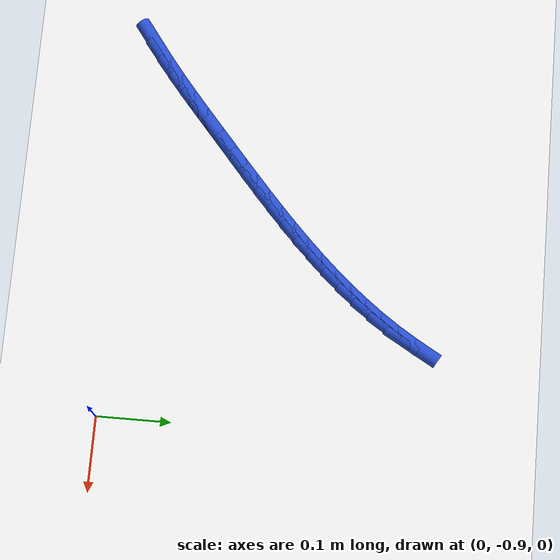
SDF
<sdf version="1.6">
 <world name="default">
  <model name="ground_plane">
   <static>1</static>
   <link name="link">
    <collision name="collision">
     <geometry><plane><normal>0 0 1</normal><size>100 100</size></plane></geometry>
     <surface><friction><ode><mu>100</mu><mu2>50</mu2></ode></friction></surface>
    </collision>
    <visual name="visual">
     <cast_shadows>0</cast_shadows>
     <geometry><plane><normal>0 0 1</normal><size>100 100</size></plane></geometry>
     <material>
      <script><uri>file://media/materials/scripts/gazebo.material</uri><name>Gazebo/WhiteGlow</name></script>
     </material>
    </visual>
   </link>
  </model>
  <model name="line">
   <link name="link_193">
    <pose>-0.5168928996185831 -0.8701466752740477 0.01 0 1.57 0.6325099286801225</pose>
    <collision name="collision">
     <geometry><cylinder><radius>0.01</radius><length>0.08</length></cylinder></geometry>
    </collision>
    <visual name="visual">
     <material>
      <script><name>Gazebo/Blue</name><uri>file://media/materials/scripts/gazebo.material</uri></script>
     </material>
     <geometry><cylinder><radius>0.01</radius><length>0.08</length></cylinder></geometry>
    </visual>
   </link>
   <link name="link_194">
    <pose>-0.49388764577357513 -0.8532846060887365 0.01 0 1.57 0.6610928831485342</pose>
    <collision name="collision">
     <geometry><cylinder><radius>0.01</radius><length>0.08</length></cylinder></geometry>
    </collision>
    <visual name="visual">
     <material>
      <script><name>Gazebo/Blue</name><uri>file://media/materials/scripts/gazebo.material</uri></script>
     </material>
     <geometry><cylinder><radius>0.01</radius><length>0.08</length></cylinder></geometry>
    </visual>
   </link>
   <link name="link_195">
    <pose>-0.47123965256886163 -0.8356676931463002 0.01 0 1.57 0.6826606611377345</pose>
    <collision name="collision">
     <geometry><cylinder><radius>0.01</radius><length>0.08</length></cylinder></geometry>
    </collision>
    <visual name="visual">
     <material>
      <script><name>Gazebo/Blue</name><uri>file://media/materials/scripts/gazebo.material</uri></script>
     </material>
     <geometry><cylinder><radius>0.01</radius><length>0.08</length></cylinder></geometry>
    </visual>
   </link>
   <link name="link_196">
    <pose>-0.4488655637716202 -0.817475960774105 0.01 0 1.57 0.6973992061071235</pose>
    <collision name="collision">
     <geometry><cylinder><radius>0.01</radius><length>0.08</length></cylinder></geometry>
    </collision>
    <visual name="visual">
     <material>
      <script><name>Gazebo/Blue</name><uri>file://media/materials/scripts/gazebo.material</uri></script>
     </material>
     <geometry><cylinder><radius>0.01</radius><length>0.08</length></cylinder></geometry>
    </visual>
   </link>
   <link name="link_197">
    <pose>-0.4266820231490281 -0.7988894332995166 0.01 0 1.57 0.7054505617943717</pose>
    <collision name="collision">
     <geometry><cylinder><radius>0.01</radius><length>0.08</length></cylinder></geometry>
    </collision>
    <visual name="visual">
     <material>
      <script><name>Gazebo/Blue</name><uri>file://media/materials/scripts/gazebo.material</uri></script>
     </material>
     <geometry><cylinder><radius>0.01</radius><length>0.08</length></cylinder></geometry>
    </visual>
   </link>
   <link name="link_198">
    <pose>-0.40460567446826456 -0.7800881350499026 0.01 0 1.57 0.7071083696130098</pose>
    <collision name="collision">
     <geometry><cylinder><radius>0.01</radius><length>0.08</length></cylinder></geometry>
    </collision>
    <visual name="visual">
     <material>
      <script><name>Gazebo/Blue</name><uri>file://media/materials/scripts/gazebo.material</uri></script>
     </material>
     <geometry><cylinder><radius>0.01</radius><length>0.08</length></cylinder></geometry>
    </visual>
   </link>
   <link name="link_199">
    <pose>-0.382556618485352 -0.7612469260995548 0.01 0 1.57 0.7073102106334305</pose>
    <collision name="collision">
     <geometry><cylinder><radius>0.01</radius><length>0.08</length></cylinder></geometry>
    </collision>
    <visual name="visual">
     <material>
      <script><name>Gazebo/Blue</name><uri>file://media/materials/scripts/gazebo.material</uri></script>
     </material>
     <geometry><cylinder><radius>0.01</radius><length>0.08</length></cylinder></geometry>
    </visual>
   </link>
   <link name="link_200">
    <pose>-0.3605348386254061 -0.7424213330977218 0.01 0 1.57 0.7109967191952854</pose>
    <collision name="collision">
     <geometry><cylinder><radius>0.01</radius><length>0.08</length></cylinder></geometry>
    </collision>
    <visual name="visual">
     <material>
      <script><name>Gazebo/Blue</name><uri>file://media/materials/scripts/gazebo.material</uri></script>
     </material>
     <geometry><cylinder><radius>0.01</radius><length>0.08</length></cylinder></geometry>
    </visual>
   </link>
   <link name="link_201">
    <pose>-0.3386204081559573 -0.7235472397809192 0.01 0 1.57 0.718409184395455</pose>
    <collision name="collision">
     <geometry><cylinder><radius>0.01</radius><length>0.08</length></cylinder></geometry>
    </collision>
    <visual name="visual">
     <material>
      <script><name>Gazebo/Blue</name><uri>file://media/materials/scripts/gazebo.material</uri></script>
     </material>
     <geometry><cylinder><radius>0.01</radius><length>0.08</length></cylinder></geometry>
    </visual>
   </link>
   <link name="link_202">
    <pose>-0.3168968987681361 -0.704555303734924 0.01 0 1.57 0.7295861531680498</pose>
    <collision name="collision">
     <geometry><cylinder><radius>0.01</radius><length>0.08</length></cylinder></geometry>
    </collision>
    <visual name="visual">
     <material>
      <script><name>Gazebo/Blue</name><uri>file://media/materials/scripts/gazebo.material</uri></script>
     </material>
     <geometry><cylinder><radius>0.01</radius><length>0.08</length></cylinder></geometry>
    </visual>
   </link>
   <link name="link_203">
    <pose>-0.29544788215307105 -0.6853761825455128 0.01 0 1.57 0.7445759929696194</pose>
    <collision name="collision">
     <geometry><cylinder><radius>0.01</radius><length>0.08</length></cylinder></geometry>
    </collision>
    <visual name="visual">
     <material>
      <script><name>Gazebo/Blue</name><uri>file://media/materials/scripts/gazebo.material</uri></script>
     </material>
     <geometry><cylinder><radius>0.01</radius><length>0.08</length></cylinder></geometry>
    </visual>
   </link>
   <link name="link_204">
    <pose>-0.2743569300018914 -0.6659405337984612 0.01 0 1.57 0.7634324085898131</pose>
    <collision name="collision">
     <geometry><cylinder><radius>0.01</radius><length>0.08</length></cylinder></geometry>
    </collision>
    <visual name="visual">
     <material>
      <script><name>Gazebo/Blue</name><uri>file://media/materials/scripts/gazebo.material</uri></script>
     </material>
     <geometry><cylinder><radius>0.01</radius><length>0.08</length></cylinder></geometry>
    </visual>
   </link>
   <link name="link_205">
    <pose>-0.25370761400572633 -0.6461790150795461 0.01 0 1.57 0.7862080508886707</pose>
    <collision name="collision">
     <geometry><cylinder><radius>0.01</radius><length>0.08</length></cylinder></geometry>
    </collision>
    <visual name="visual">
     <material>
      <script><name>Gazebo/Blue</name><uri>file://media/materials/scripts/gazebo.material</uri></script>
     </material>
     <geometry><cylinder><radius>0.01</radius><length>0.08</length></cylinder></geometry>
    </visual>
   </link>
   <link name="link_206">
    <pose>-0.23358350585570453 -0.6260222839745431 0.01 0 1.57 0.8129460153326793</pose>
    <collision name="collision">
     <geometry><cylinder><radius>0.01</radius><length>0.08</length></cylinder></geometry>
    </collision>
    <visual name="visual">
     <material>
      <script><name>Gazebo/Blue</name><uri>file://media/materials/scripts/gazebo.material</uri></script>
     </material>
     <geometry><cylinder><radius>0.01</radius><length>0.08</length></cylinder></geometry>
    </visual>
   </link>
   <link name="link_207">
    <pose>-0.2140681772429561 -0.6054009980692294 0.01 0 1.57 0.8436691152677737</pose>
    <collision name="collision">
     <geometry><cylinder><radius>0.01</radius><length>0.08</length></cylinder></geometry>
    </collision>
    <visual name="visual">
     <material>
      <script><name>Gazebo/Blue</name><uri>file://media/materials/scripts/gazebo.material</uri></script>
     </material>
     <geometry><cylinder><radius>0.01</radius><length>0.08</length></cylinder></geometry>
    </visual>
   </link>
   <link name="link_208">
    <pose>-0.1952451998586099 -0.5842458149493811 0.01 0 1.57 0.8783670126231294</pose>
    <collision name="collision">
     <geometry><cylinder><radius>0.01</radius><length>0.08</length></cylinder></geometry>
    </collision>
    <visual name="visual">
     <material>
      <script><name>Gazebo/Blue</name><uri>file://media/materials/scripts/gazebo.material</uri></script>
     </material>
     <geometry><cylinder><radius>0.01</radius><length>0.08</length></cylinder></geometry>
    </visual>
   </link>
   <link name="link_209">
    <pose>-0.17719814539379505 -0.5624873922007745 0.01 0 1.57 0.9169816259496723</pose>
    <collision name="collision">
     <geometry><cylinder><radius>0.01</radius><length>0.08</length></cylinder></geometry>
    </collision>
    <visual name="visual">
     <material>
      <script><name>Gazebo/Blue</name><uri>file://media/materials/scripts/gazebo.material</uri></script>
     </material>
     <geometry><cylinder><radius>0.01</radius><length>0.08</length></cylinder></geometry>
    </visual>
   </link>
   <link name="link_210">
    <pose>-0.16001058553964032 -0.5400563874091853 0.01 0 1.57 0.9593901916537526</pose>
    <collision name="collision">
     <geometry><cylinder><radius>0.01</radius><length>0.08</length></cylinder></geometry>
    </collision>
    <visual name="visual">
     <material>
      <script><name>Gazebo/Blue</name><uri>file://media/materials/scripts/gazebo.material</uri></script>
     </material>
     <geometry><cylinder><radius>0.01</radius><length>0.08</length></cylinder></geometry>
    </visual>
   </link>
   <link name="link_211">
    <pose>-0.14376606510778223 -0.5168834951644449 0.01 0 1.57 1.0040285502296395</pose>
    <collision name="collision">
     <geometry><cylinder><radius>0.01</radius><length>0.08</length></cylinder></geometry>
    </collision>
    <visual name="visual">
     <material>
      <script><name>Gazebo/Blue</name><uri>file://media/materials/scripts/gazebo.material</uri></script>
     </material>
     <geometry><cylinder><radius>0.01</radius><length>0.08</length></cylinder></geometry>
    </visual>
   </link>
   <link name="link_212">
    <pose>-0.12852363025573496 -0.4929331364922934 0.01 0 1.57 1.0469157247272756</pose>
    <collision name="collision">
     <geometry><cylinder><radius>0.01</radius><length>0.08</length></cylinder></geometry>
    </collision>
    <visual name="visual">
     <material>
      <script><name>Gazebo/Blue</name><uri>file://media/materials/scripts/gazebo.material</uri></script>
     </material>
     <geometry><cylinder><radius>0.01</radius><length>0.08</length></cylinder></geometry>
    </visual>
   </link>
  </model>
 </world>
</sdf>
